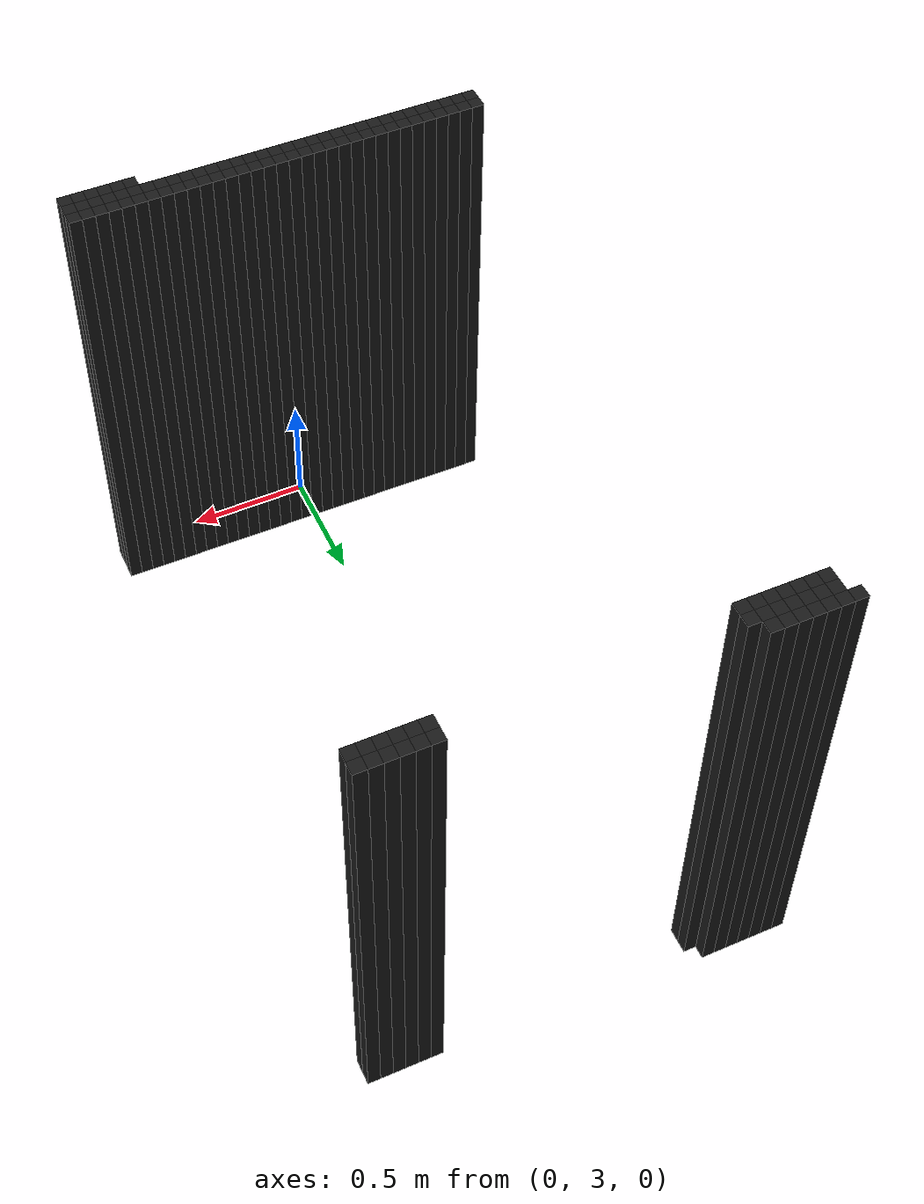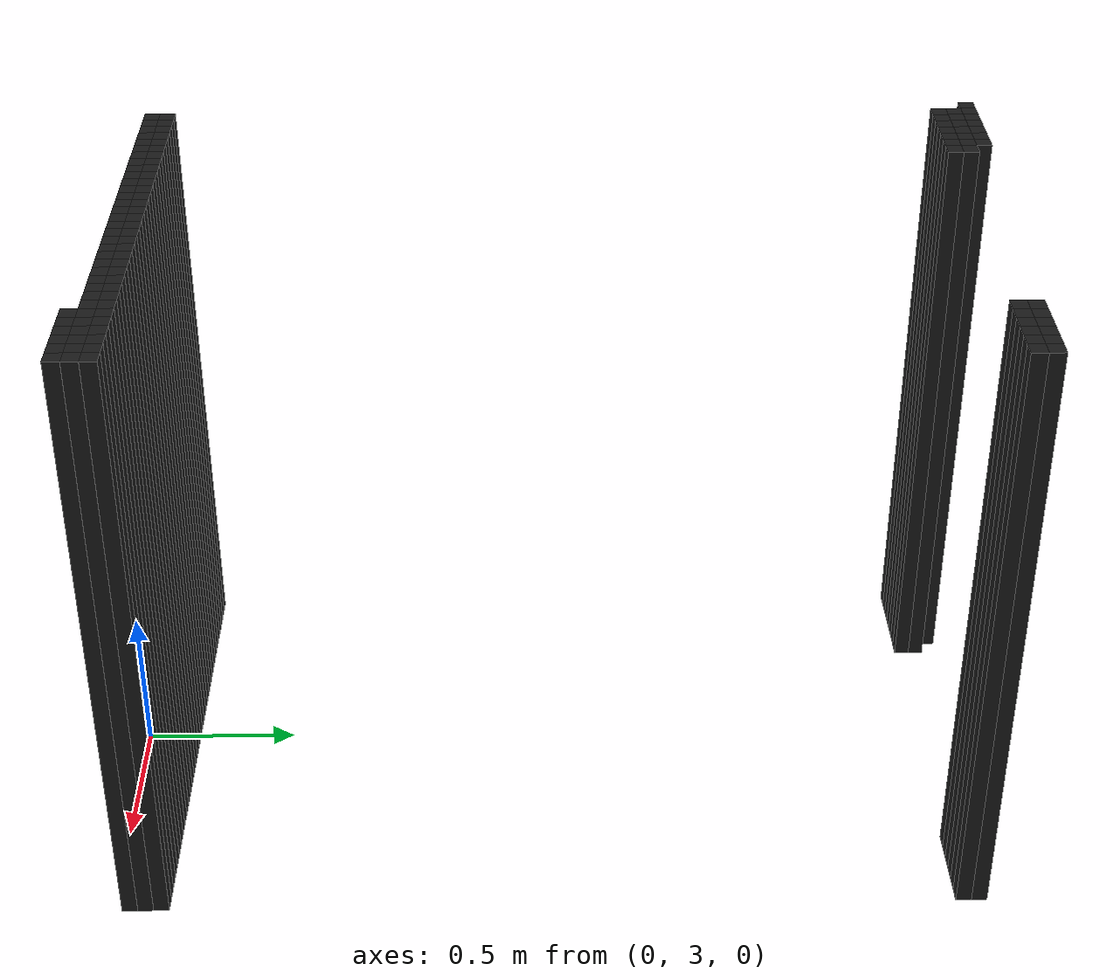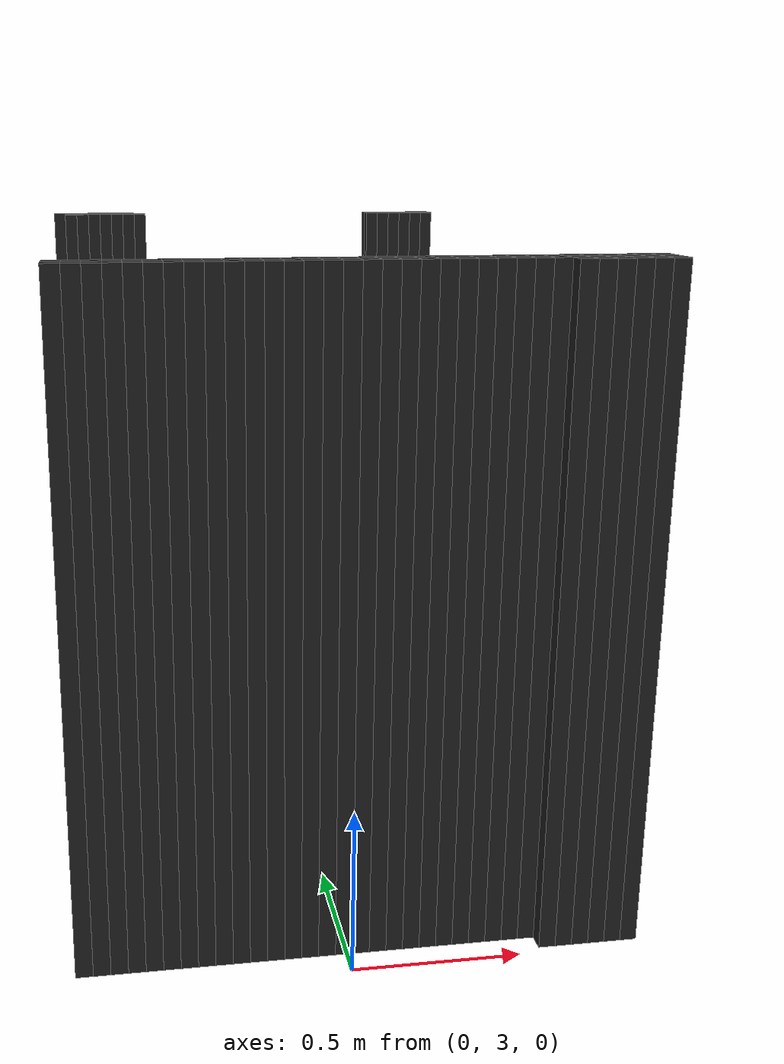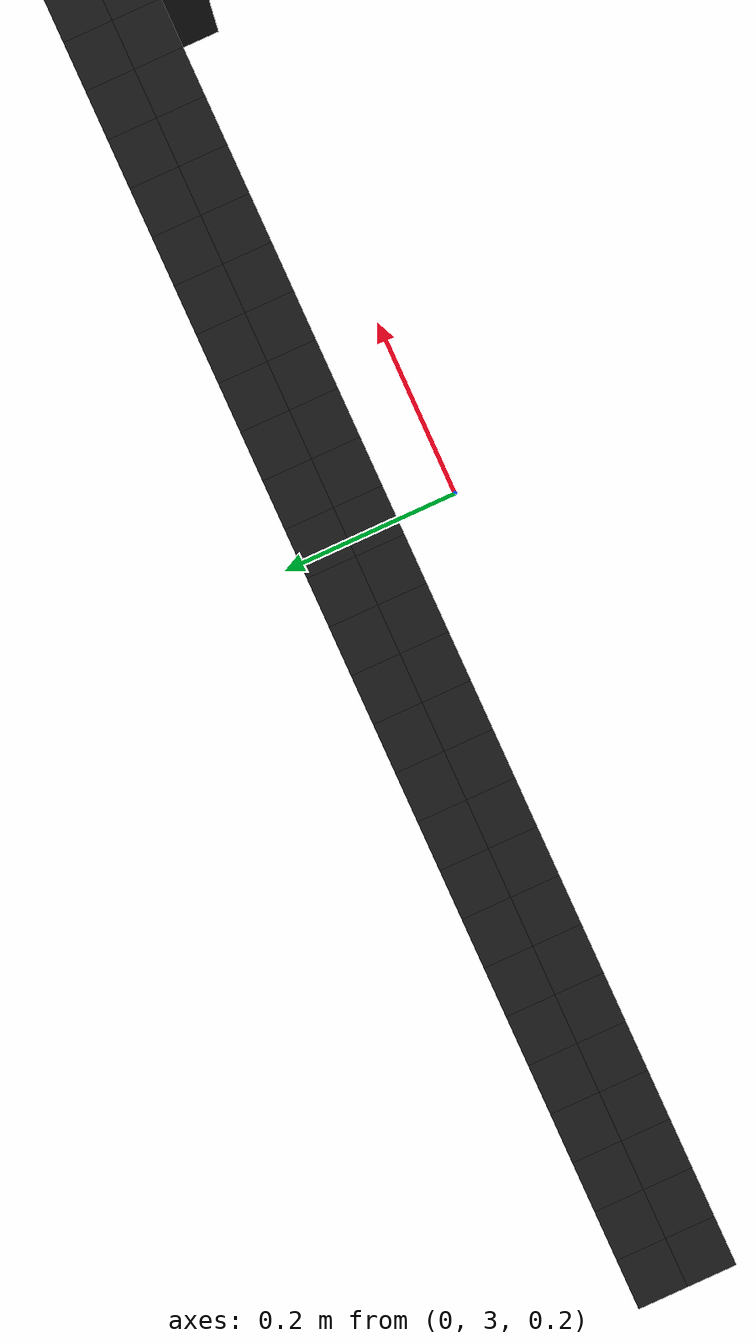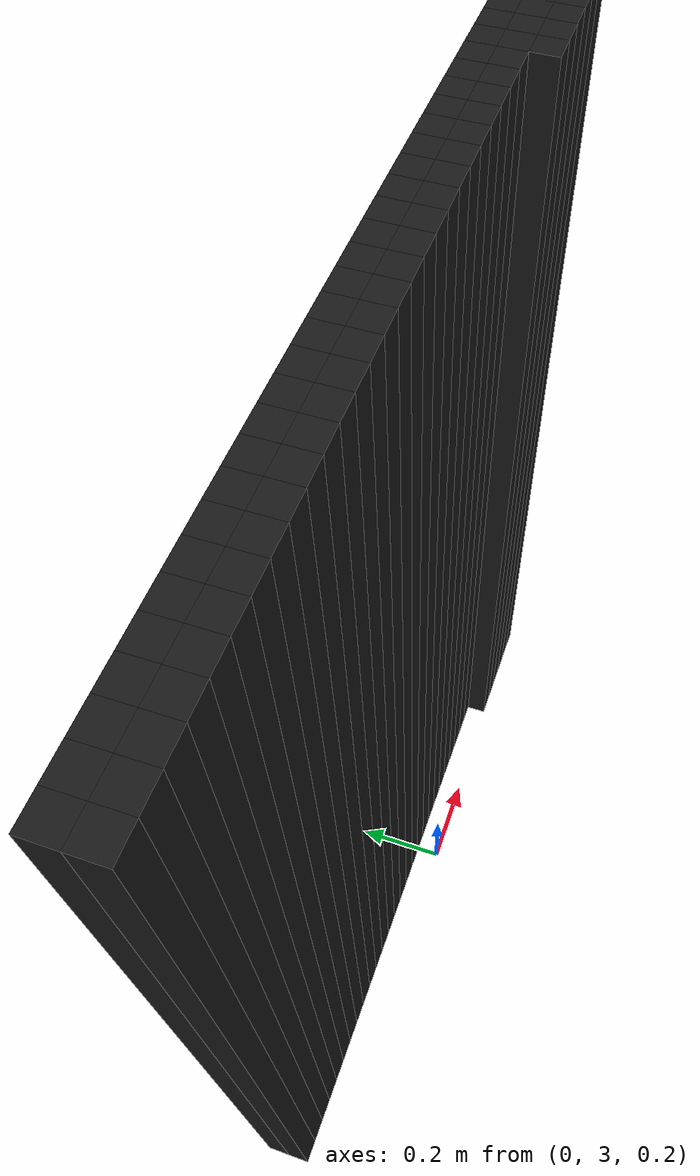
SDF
<sdf version="1.6">
 <model name="obstacle_74_51">
  <pose>-0.8099999999999996 5.8 1.0 0 0 0</pose>
  <static>true</static>
  <link name="box_link">
   <collision name="box_collision"><geometry><box><size>0.05 0.05 2.0</size></box></geometry></collision>
   <visual name="box_visual">
    <geometry><box><size>0.05 0.05 2.0</size></box></geometry>
    <material><ambient>0 0 0 1</ambient><diffuse>0.1 0.1 0.1 1</diffuse></material>
   </visual>
  </link>
 </model>
 <model name="obstacle_75_51">
  <pose>-0.7599999999999998 5.8 1.0 0 0 0</pose>
  <static>true</static>
  <link name="box_link">
   <collision name="box_collision"><geometry><box><size>0.05 0.05 2.0</size></box></geometry></collision>
   <visual name="box_visual">
    <geometry><box><size>0.05 0.05 2.0</size></box></geometry>
    <material><ambient>0 0 0 1</ambient><diffuse>0.1 0.1 0.1 1</diffuse></material>
   </visual>
  </link>
 </model>
 <model name="obstacle_76_51">
  <pose>-0.7099999999999995 5.8 1.0 0 0 0</pose>
  <static>true</static>
  <link name="box_link">
   <collision name="box_collision"><geometry><box><size>0.05 0.05 2.0</size></box></geometry></collision>
   <visual name="box_visual">
    <geometry><box><size>0.05 0.05 2.0</size></box></geometry>
    <material><ambient>0 0 0 1</ambient><diffuse>0.1 0.1 0.1 1</diffuse></material>
   </visual>
  </link>
 </model>
 <model name="obstacle_77_51">
  <pose>-0.6599999999999997 5.8 1.0 0 0 0</pose>
  <static>true</static>
  <link name="box_link">
   <collision name="box_collision"><geometry><box><size>0.05 0.05 2.0</size></box></geometry></collision>
   <visual name="box_visual">
    <geometry><box><size>0.05 0.05 2.0</size></box></geometry>
    <material><ambient>0 0 0 1</ambient><diffuse>0.1 0.1 0.1 1</diffuse></material>
   </visual>
  </link>
 </model>
 <model name="obstacle_78_51">
  <pose>-0.6099999999999994 5.8 1.0 0 0 0</pose>
  <static>true</static>
  <link name="box_link">
   <collision name="box_collision"><geometry><box><size>0.05 0.05 2.0</size></box></geometry></collision>
   <visual name="box_visual">
    <geometry><box><size>0.05 0.05 2.0</size></box></geometry>
    <material><ambient>0 0 0 1</ambient><diffuse>0.1 0.1 0.1 1</diffuse></material>
   </visual>
  </link>
 </model>
 <model name="obstacle_79_51">
  <pose>-0.5599999999999996 5.8 1.0 0 0 0</pose>
  <static>true</static>
  <link name="box_link">
   <collision name="box_collision"><geometry><box><size>0.05 0.05 2.0</size></box></geometry></collision>
   <visual name="box_visual">
    <geometry><box><size>0.05 0.05 2.0</size></box></geometry>
    <material><ambient>0 0 0 1</ambient><diffuse>0.1 0.1 0.1 1</diffuse></material>
   </visual>
  </link>
 </model>
 <model name="obstacle_80_51">
  <pose>-0.5099999999999998 5.8 1.0 0 0 0</pose>
  <static>true</static>
  <link name="box_link">
   <collision name="box_collision"><geometry><box><size>0.05 0.05 2.0</size></box></geometry></collision>
   <visual name="box_visual">
    <geometry><box><size>0.05 0.05 2.0</size></box></geometry>
    <material><ambient>0 0 0 1</ambient><diffuse>0.1 0.1 0.1 1</diffuse></material>
   </visual>
  </link>
 </model>
 <model name="obstacle_75_52">
  <pose>-0.7599999999999998 5.75 1.0 0 0 0</pose>
  <static>true</static>
  <link name="box_link">
   <collision name="box_collision"><geometry><box><size>0.05 0.05 2.0</size></box></geometry></collision>
   <visual name="box_visual">
    <geometry><box><size>0.05 0.05 2.0</size></box></geometry>
    <material><ambient>0 0 0 1</ambient><diffuse>0.1 0.1 0.1 1</diffuse></material>
   </visual>
  </link>
 </model>
 <model name="obstacle_76_52">
  <pose>-0.7099999999999995 5.75 1.0 0 0 0</pose>
  <static>true</static>
  <link name="box_link">
   <collision name="box_collision"><geometry><box><size>0.05 0.05 2.0</size></box></geometry></collision>
   <visual name="box_visual">
    <geometry><box><size>0.05 0.05 2.0</size></box></geometry>
    <material><ambient>0 0 0 1</ambient><diffuse>0.1 0.1 0.1 1</diffuse></material>
   </visual>
  </link>
 </model>
 <model name="obstacle_77_52">
  <pose>-0.6599999999999997 5.75 1.0 0 0 0</pose>
  <static>true</static>
  <link name="box_link">
   <collision name="box_collision"><geometry><box><size>0.05 0.05 2.0</size></box></geometry></collision>
   <visual name="box_visual">
    <geometry><box><size>0.05 0.05 2.0</size></box></geometry>
    <material><ambient>0 0 0 1</ambient><diffuse>0.1 0.1 0.1 1</diffuse></material>
   </visual>
  </link>
 </model>
 <model name="obstacle_78_52">
  <pose>-0.6099999999999994 5.75 1.0 0 0 0</pose>
  <static>true</static>
  <link name="box_link">
   <collision name="box_collision"><geometry><box><size>0.05 0.05 2.0</size></box></geometry></collision>
   <visual name="box_visual">
    <geometry><box><size>0.05 0.05 2.0</size></box></geometry>
    <material><ambient>0 0 0 1</ambient><diffuse>0.1 0.1 0.1 1</diffuse></material>
   </visual>
  </link>
 </model>
 <model name="obstacle_79_52">
  <pose>-0.5599999999999996 5.75 1.0 0 0 0</pose>
  <static>true</static>
  <link name="box_link">
   <collision name="box_collision"><geometry><box><size>0.05 0.05 2.0</size></box></geometry></collision>
   <visual name="box_visual">
    <geometry><box><size>0.05 0.05 2.0</size></box></geometry>
    <material><ambient>0 0 0 1</ambient><diffuse>0.1 0.1 0.1 1</diffuse></material>
   </visual>
  </link>
 </model>
 <model name="obstacle_80_52">
  <pose>-0.5099999999999998 5.75 1.0 0 0 0</pose>
  <static>true</static>
  <link name="box_link">
   <collision name="box_collision"><geometry><box><size>0.05 0.05 2.0</size></box></geometry></collision>
   <visual name="box_visual">
    <geometry><box><size>0.05 0.05 2.0</size></box></geometry>
    <material><ambient>0 0 0 1</ambient><diffuse>0.1 0.1 0.1 1</diffuse></material>
   </visual>
  </link>
 </model>
 <model name="obstacle_81_52">
  <pose>-0.45999999999999996 5.75 1.0 0 0 0</pose>
  <static>true</static>
  <link name="box_link">
   <collision name="box_collision"><geometry><box><size>0.05 0.05 2.0</size></box></geometry></collision>
   <visual name="box_visual">
    <geometry><box><size>0.05 0.05 2.0</size></box></geometry>
    <material><ambient>0 0 0 1</ambient><diffuse>0.1 0.1 0.1 1</diffuse></material>
   </visual>
  </link>
 </model>
 <model name="obstacle_102_52">
  <pose>0.5900000000000007 5.75 1.0 0 0 0</pose>
  <static>true</static>
  <link name="box_link">
   <collision name="box_collision"><geometry><box><size>0.05 0.05 2.0</size></box></geometry></collision>
   <visual name="box_visual">
    <geometry><box><size>0.05 0.05 2.0</size></box></geometry>
    <material><ambient>0 0 0 1</ambient><diffuse>0.1 0.1 0.1 1</diffuse></material>
   </visual>
  </link>
 </model>
 <model name="obstacle_103_52">
  <pose>0.6400000000000006 5.75 1.0 0 0 0</pose>
  <static>true</static>
  <link name="box_link">
   <collision name="box_collision"><geometry><box><size>0.05 0.05 2.0</size></box></geometry></collision>
   <visual name="box_visual">
    <geometry><box><size>0.05 0.05 2.0</size></box></geometry>
    <material><ambient>0 0 0 1</ambient><diffuse>0.1 0.1 0.1 1</diffuse></material>
   </visual>
  </link>
 </model>
 <model name="obstacle_104_52">
  <pose>0.6900000000000004 5.75 1.0 0 0 0</pose>
  <static>true</static>
  <link name="box_link">
   <collision name="box_collision"><geometry><box><size>0.05 0.05 2.0</size></box></geometry></collision>
   <visual name="box_visual">
    <geometry><box><size>0.05 0.05 2.0</size></box></geometry>
    <material><ambient>0 0 0 1</ambient><diffuse>0.1 0.1 0.1 1</diffuse></material>
   </visual>
  </link>
 </model>
 <model name="obstacle_105_52">
  <pose>0.7400000000000002 5.75 1.0 0 0 0</pose>
  <static>true</static>
  <link name="box_link">
   <collision name="box_collision"><geometry><box><size>0.05 0.05 2.0</size></box></geometry></collision>
   <visual name="box_visual">
    <geometry><box><size>0.05 0.05 2.0</size></box></geometry>
    <material><ambient>0 0 0 1</ambient><diffuse>0.1 0.1 0.1 1</diffuse></material>
   </visual>
  </link>
 </model>
 <model name="obstacle_106_52">
  <pose>0.7900000000000009 5.75 1.0 0 0 0</pose>
  <static>true</static>
  <link name="box_link">
   <collision name="box_collision"><geometry><box><size>0.05 0.05 2.0</size></box></geometry></collision>
   <visual name="box_visual">
    <geometry><box><size>0.05 0.05 2.0</size></box></geometry>
    <material><ambient>0 0 0 1</ambient><diffuse>0.1 0.1 0.1 1</diffuse></material>
   </visual>
  </link>
 </model>
 <model name="obstacle_107_52">
  <pose>0.8400000000000007 5.75 1.0 0 0 0</pose>
  <static>true</static>
  <link name="box_link">
   <collision name="box_collision"><geometry><box><size>0.05 0.05 2.0</size></box></geometry></collision>
   <visual name="box_visual">
    <geometry><box><size>0.05 0.05 2.0</size></box></geometry>
    <material><ambient>0 0 0 1</ambient><diffuse>0.1 0.1 0.1 1</diffuse></material>
   </visual>
  </link>
 </model>
 <model name="obstacle_75_53">
  <pose>-0.7599999999999998 5.7 1.0 0 0 0</pose>
  <static>true</static>
  <link name="box_link">
   <collision name="box_collision"><geometry><box><size>0.05 0.05 2.0</size></box></geometry></collision>
   <visual name="box_visual">
    <geometry><box><size>0.05 0.05 2.0</size></box></geometry>
    <material><ambient>0 0 0 1</ambient><diffuse>0.1 0.1 0.1 1</diffuse></material>
   </visual>
  </link>
 </model>
 <model name="obstacle_76_53">
  <pose>-0.7099999999999995 5.7 1.0 0 0 0</pose>
  <static>true</static>
  <link name="box_link">
   <collision name="box_collision"><geometry><box><size>0.05 0.05 2.0</size></box></geometry></collision>
   <visual name="box_visual">
    <geometry><box><size>0.05 0.05 2.0</size></box></geometry>
    <material><ambient>0 0 0 1</ambient><diffuse>0.1 0.1 0.1 1</diffuse></material>
   </visual>
  </link>
 </model>
 <model name="obstacle_77_53">
  <pose>-0.6599999999999997 5.7 1.0 0 0 0</pose>
  <static>true</static>
  <link name="box_link">
   <collision name="box_collision"><geometry><box><size>0.05 0.05 2.0</size></box></geometry></collision>
   <visual name="box_visual">
    <geometry><box><size>0.05 0.05 2.0</size></box></geometry>
    <material><ambient>0 0 0 1</ambient><diffuse>0.1 0.1 0.1 1</diffuse></material>
   </visual>
  </link>
 </model>
 <model name="obstacle_78_53">
  <pose>-0.6099999999999994 5.7 1.0 0 0 0</pose>
  <static>true</static>
  <link name="box_link">
   <collision name="box_collision"><geometry><box><size>0.05 0.05 2.0</size></box></geometry></collision>
   <visual name="box_visual">
    <geometry><box><size>0.05 0.05 2.0</size></box></geometry>
    <material><ambient>0 0 0 1</ambient><diffuse>0.1 0.1 0.1 1</diffuse></material>
   </visual>
  </link>
 </model>
 <model name="obstacle_79_53">
  <pose>-0.5599999999999996 5.7 1.0 0 0 0</pose>
  <static>true</static>
  <link name="box_link">
   <collision name="box_collision"><geometry><box><size>0.05 0.05 2.0</size></box></geometry></collision>
   <visual name="box_visual">
    <geometry><box><size>0.05 0.05 2.0</size></box></geometry>
    <material><ambient>0 0 0 1</ambient><diffuse>0.1 0.1 0.1 1</diffuse></material>
   </visual>
  </link>
 </model>
 <model name="obstacle_80_53">
  <pose>-0.5099999999999998 5.7 1.0 0 0 0</pose>
  <static>true</static>
  <link name="box_link">
   <collision name="box_collision"><geometry><box><size>0.05 0.05 2.0</size></box></geometry></collision>
   <visual name="box_visual">
    <geometry><box><size>0.05 0.05 2.0</size></box></geometry>
    <material><ambient>0 0 0 1</ambient><diffuse>0.1 0.1 0.1 1</diffuse></material>
   </visual>
  </link>
 </model>
 <model name="obstacle_81_53">
  <pose>-0.45999999999999996 5.7 1.0 0 0 0</pose>
  <static>true</static>
  <link name="box_link">
   <collision name="box_collision"><geometry><box><size>0.05 0.05 2.0</size></box></geometry></collision>
   <visual name="box_visual">
    <geometry><box><size>0.05 0.05 2.0</size></box></geometry>
    <material><ambient>0 0 0 1</ambient><diffuse>0.1 0.1 0.1 1</diffuse></material>
   </visual>
  </link>
 </model>
 <model name="obstacle_102_53">
  <pose>0.5900000000000007 5.7 1.0 0 0 0</pose>
  <static>true</static>
  <link name="box_link">
   <collision name="box_collision"><geometry><box><size>0.05 0.05 2.0</size></box></geometry></collision>
   <visual name="box_visual">
    <geometry><box><size>0.05 0.05 2.0</size></box></geometry>
    <material><ambient>0 0 0 1</ambient><diffuse>0.1 0.1 0.1 1</diffuse></material>
   </visual>
  </link>
 </model>
 <model name="obstacle_103_53">
  <pose>0.6400000000000006 5.7 1.0 0 0 0</pose>
  <static>true</static>
  <link name="box_link">
   <collision name="box_collision"><geometry><box><size>0.05 0.05 2.0</size></box></geometry></collision>
   <visual name="box_visual">
    <geometry><box><size>0.05 0.05 2.0</size></box></geometry>
    <material><ambient>0 0 0 1</ambient><diffuse>0.1 0.1 0.1 1</diffuse></material>
   </visual>
  </link>
 </model>
 <model name="obstacle_104_53">
  <pose>0.6900000000000004 5.7 1.0 0 0 0</pose>
  <static>true</static>
  <link name="box_link">
   <collision name="box_collision"><geometry><box><size>0.05 0.05 2.0</size></box></geometry></collision>
   <visual name="box_visual">
    <geometry><box><size>0.05 0.05 2.0</size></box></geometry>
    <material><ambient>0 0 0 1</ambient><diffuse>0.1 0.1 0.1 1</diffuse></material>
   </visual>
  </link>
 </model>
 <model name="obstacle_105_53">
  <pose>0.7400000000000002 5.7 1.0 0 0 0</pose>
  <static>true</static>
  <link name="box_link">
   <collision name="box_collision"><geometry><box><size>0.05 0.05 2.0</size></box></geometry></collision>
   <visual name="box_visual">
    <geometry><box><size>0.05 0.05 2.0</size></box></geometry>
    <material><ambient>0 0 0 1</ambient><diffuse>0.1 0.1 0.1 1</diffuse></material>
   </visual>
  </link>
 </model>
 <model name="obstacle_106_53">
  <pose>0.7900000000000009 5.7 1.0 0 0 0</pose>
  <static>true</static>
  <link name="box_link">
   <collision name="box_collision"><geometry><box><size>0.05 0.05 2.0</size></box></geometry></collision>
   <visual name="box_visual">
    <geometry><box><size>0.05 0.05 2.0</size></box></geometry>
    <material><ambient>0 0 0 1</ambient><diffuse>0.1 0.1 0.1 1</diffuse></material>
   </visual>
  </link>
 </model>
 <model name="obstacle_107_53">
  <pose>0.8400000000000007 5.7 1.0 0 0 0</pose>
  <static>true</static>
  <link name="box_link">
   <collision name="box_collision"><geometry><box><size>0.05 0.05 2.0</size></box></geometry></collision>
   <visual name="box_visual">
    <geometry><box><size>0.05 0.05 2.0</size></box></geometry>
    <material><ambient>0 0 0 1</ambient><diffuse>0.1 0.1 0.1 1</diffuse></material>
   </visual>
  </link>
 </model>
 <model name="obstacle_75_104">
  <pose>-0.7599999999999998 3.1500000000000004 1.0 0 0 0</pose>
  <static>true</static>
  <link name="box_link">
   <collision name="box_collision"><geometry><box><size>0.05 0.05 2.0</size></box></geometry></collision>
   <visual name="box_visual">
    <geometry><box><size>0.05 0.05 2.0</size></box></geometry>
    <material><ambient>0 0 0 1</ambient><diffuse>0.1 0.1 0.1 1</diffuse></material>
   </visual>
  </link>
 </model>
 <model name="obstacle_76_104">
  <pose>-0.7099999999999995 3.1500000000000004 1.0 0 0 0</pose>
  <static>true</static>
  <link name="box_link">
   <collision name="box_collision"><geometry><box><size>0.05 0.05 2.0</size></box></geometry></collision>
   <visual name="box_visual">
    <geometry><box><size>0.05 0.05 2.0</size></box></geometry>
    <material><ambient>0 0 0 1</ambient><diffuse>0.1 0.1 0.1 1</diffuse></material>
   </visual>
  </link>
 </model>
 <model name="obstacle_77_104">
  <pose>-0.6599999999999997 3.1500000000000004 1.0 0 0 0</pose>
  <static>true</static>
  <link name="box_link">
   <collision name="box_collision"><geometry><box><size>0.05 0.05 2.0</size></box></geometry></collision>
   <visual name="box_visual">
    <geometry><box><size>0.05 0.05 2.0</size></box></geometry>
    <material><ambient>0 0 0 1</ambient><diffuse>0.1 0.1 0.1 1</diffuse></material>
   </visual>
  </link>
 </model>
 <model name="obstacle_78_104">
  <pose>-0.6099999999999994 3.1500000000000004 1.0 0 0 0</pose>
  <static>true</static>
  <link name="box_link">
   <collision name="box_collision"><geometry><box><size>0.05 0.05 2.0</size></box></geometry></collision>
   <visual name="box_visual">
    <geometry><box><size>0.05 0.05 2.0</size></box></geometry>
    <material><ambient>0 0 0 1</ambient><diffuse>0.1 0.1 0.1 1</diffuse></material>
   </visual>
  </link>
 </model>
 <model name="obstacle_79_104">
  <pose>-0.5599999999999996 3.1500000000000004 1.0 0 0 0</pose>
  <static>true</static>
  <link name="box_link">
   <collision name="box_collision"><geometry><box><size>0.05 0.05 2.0</size></box></geometry></collision>
   <visual name="box_visual">
    <geometry><box><size>0.05 0.05 2.0</size></box></geometry>
    <material><ambient>0 0 0 1</ambient><diffuse>0.1 0.1 0.1 1</diffuse></material>
   </visual>
  </link>
 </model>
 <model name="obstacle_80_104">
  <pose>-0.5099999999999998 3.1500000000000004 1.0 0 0 0</pose>
  <static>true</static>
  <link name="box_link">
   <collision name="box_collision"><geometry><box><size>0.05 0.05 2.0</size></box></geometry></collision>
   <visual name="box_visual">
    <geometry><box><size>0.05 0.05 2.0</size></box></geometry>
    <material><ambient>0 0 0 1</ambient><diffuse>0.1 0.1 0.1 1</diffuse></material>
   </visual>
  </link>
 </model>
 <model name="obstacle_81_104">
  <pose>-0.45999999999999996 3.1500000000000004 1.0 0 0 0</pose>
  <static>true</static>
  <link name="box_link">
   <collision name="box_collision"><geometry><box><size>0.05 0.05 2.0</size></box></geometry></collision>
   <visual name="box_visual">
    <geometry><box><size>0.05 0.05 2.0</size></box></geometry>
    <material><ambient>0 0 0 1</ambient><diffuse>0.1 0.1 0.1 1</diffuse></material>
   </visual>
  </link>
 </model>
 <model name="obstacle_82_104">
  <pose>-0.40999999999999925 3.1500000000000004 1.0 0 0 0</pose>
  <static>true</static>
  <link name="box_link">
   <collision name="box_collision"><geometry><box><size>0.05 0.05 2.0</size></box></geometry></collision>
   <visual name="box_visual">
    <geometry><box><size>0.05 0.05 2.0</size></box></geometry>
    <material><ambient>0 0 0 1</ambient><diffuse>0.1 0.1 0.1 1</diffuse></material>
   </visual>
  </link>
 </model>
 <model name="obstacle_83_104">
  <pose>-0.35999999999999943 3.1500000000000004 1.0 0 0 0</pose>
  <static>true</static>
  <link name="box_link">
   <collision name="box_collision"><geometry><box><size>0.05 0.05 2.0</size></box></geometry></collision>
   <visual name="box_visual">
    <geometry><box><size>0.05 0.05 2.0</size></box></geometry>
    <material><ambient>0 0 0 1</ambient><diffuse>0.1 0.1 0.1 1</diffuse></material>
   </visual>
  </link>
 </model>
 <model name="obstacle_84_104">
  <pose>-0.3099999999999996 3.1500000000000004 1.0 0 0 0</pose>
  <static>true</static>
  <link name="box_link">
   <collision name="box_collision"><geometry><box><size>0.05 0.05 2.0</size></box></geometry></collision>
   <visual name="box_visual">
    <geometry><box><size>0.05 0.05 2.0</size></box></geometry>
    <material><ambient>0 0 0 1</ambient><diffuse>0.1 0.1 0.1 1</diffuse></material>
   </visual>
  </link>
 </model>
 <model name="obstacle_85_104">
  <pose>-0.2599999999999998 3.1500000000000004 1.0 0 0 0</pose>
  <static>true</static>
  <link name="box_link">
   <collision name="box_collision"><geometry><box><size>0.05 0.05 2.0</size></box></geometry></collision>
   <visual name="box_visual">
    <geometry><box><size>0.05 0.05 2.0</size></box></geometry>
    <material><ambient>0 0 0 1</ambient><diffuse>0.1 0.1 0.1 1</diffuse></material>
   </visual>
  </link>
 </model>
 <model name="obstacle_86_104">
  <pose>-0.20999999999999996 3.1500000000000004 1.0 0 0 0</pose>
  <static>true</static>
  <link name="box_link">
   <collision name="box_collision"><geometry><box><size>0.05 0.05 2.0</size></box></geometry></collision>
   <visual name="box_visual">
    <geometry><box><size>0.05 0.05 2.0</size></box></geometry>
    <material><ambient>0 0 0 1</ambient><diffuse>0.1 0.1 0.1 1</diffuse></material>
   </visual>
  </link>
 </model>
 <model name="obstacle_87_104">
  <pose>-0.15999999999999925 3.1500000000000004 1.0 0 0 0</pose>
  <static>true</static>
  <link name="box_link">
   <collision name="box_collision"><geometry><box><size>0.05 0.05 2.0</size></box></geometry></collision>
   <visual name="box_visual">
    <geometry><box><size>0.05 0.05 2.0</size></box></geometry>
    <material><ambient>0 0 0 1</ambient><diffuse>0.1 0.1 0.1 1</diffuse></material>
   </visual>
  </link>
 </model>
 <model name="obstacle_88_104">
  <pose>-0.10999999999999943 3.1500000000000004 1.0 0 0 0</pose>
  <static>true</static>
  <link name="box_link">
   <collision name="box_collision"><geometry><box><size>0.05 0.05 2.0</size></box></geometry></collision>
   <visual name="box_visual">
    <geometry><box><size>0.05 0.05 2.0</size></box></geometry>
    <material><ambient>0 0 0 1</ambient><diffuse>0.1 0.1 0.1 1</diffuse></material>
   </visual>
  </link>
 </model>
 <model name="obstacle_89_104">
  <pose>-0.05999999999999961 3.1500000000000004 1.0 0 0 0</pose>
  <static>true</static>
  <link name="box_link">
   <collision name="box_collision"><geometry><box><size>0.05 0.05 2.0</size></box></geometry></collision>
   <visual name="box_visual">
    <geometry><box><size>0.05 0.05 2.0</size></box></geometry>
    <material><ambient>0 0 0 1</ambient><diffuse>0.1 0.1 0.1 1</diffuse></material>
   </visual>
  </link>
 </model>
 <model name="obstacle_90_104">
  <pose>-0.009999999999999787 3.1500000000000004 1.0 0 0 0</pose>
  <static>true</static>
  <link name="box_link">
   <collision name="box_collision"><geometry><box><size>0.05 0.05 2.0</size></box></geometry></collision>
   <visual name="box_visual">
    <geometry><box><size>0.05 0.05 2.0</size></box></geometry>
    <material><ambient>0 0 0 1</ambient><diffuse>0.1 0.1 0.1 1</diffuse></material>
   </visual>
  </link>
 </model>
 <model name="obstacle_91_104">
  <pose>0.040000000000000036 3.1500000000000004 1.0 0 0 0</pose>
  <static>true</static>
  <link name="box_link">
   <collision name="box_collision"><geometry><box><size>0.05 0.05 2.0</size></box></geometry></collision>
   <visual name="box_visual">
    <geometry><box><size>0.05 0.05 2.0</size></box></geometry>
    <material><ambient>0 0 0 1</ambient><diffuse>0.1 0.1 0.1 1</diffuse></material>
   </visual>
  </link>
 </model>
 <model name="obstacle_92_104">
  <pose>0.09000000000000075 3.1500000000000004 1.0 0 0 0</pose>
  <static>true</static>
  <link name="box_link">
   <collision name="box_collision"><geometry><box><size>0.05 0.05 2.0</size></box></geometry></collision>
   <visual name="box_visual">
    <geometry><box><size>0.05 0.05 2.0</size></box></geometry>
    <material><ambient>0 0 0 1</ambient><diffuse>0.1 0.1 0.1 1</diffuse></material>
   </visual>
  </link>
 </model>
 <model name="obstacle_93_104">
  <pose>0.14000000000000057 3.1500000000000004 1.0 0 0 0</pose>
  <static>true</static>
  <link name="box_link">
   <collision name="box_collision"><geometry><box><size>0.05 0.05 2.0</size></box></geometry></collision>
   <visual name="box_visual">
    <geometry><box><size>0.05 0.05 2.0</size></box></geometry>
    <material><ambient>0 0 0 1</ambient><diffuse>0.1 0.1 0.1 1</diffuse></material>
   </visual>
  </link>
 </model>
 <model name="obstacle_94_104">
  <pose>0.1900000000000004 3.1500000000000004 1.0 0 0 0</pose>
  <static>true</static>
  <link name="box_link">
   <collision name="box_collision"><geometry><box><size>0.05 0.05 2.0</size></box></geometry></collision>
   <visual name="box_visual">
    <geometry><box><size>0.05 0.05 2.0</size></box></geometry>
    <material><ambient>0 0 0 1</ambient><diffuse>0.1 0.1 0.1 1</diffuse></material>
   </visual>
  </link>
 </model>
 <model name="obstacle_95_104">
  <pose>0.2400000000000002 3.1500000000000004 1.0 0 0 0</pose>
  <static>true</static>
  <link name="box_link">
   <collision name="box_collision"><geometry><box><size>0.05 0.05 2.0</size></box></geometry></collision>
   <visual name="box_visual">
    <geometry><box><size>0.05 0.05 2.0</size></box></geometry>
    <material><ambient>0 0 0 1</ambient><diffuse>0.1 0.1 0.1 1</diffuse></material>
   </visual>
  </link>
 </model>
 <model name="obstacle_96_104">
  <pose>0.2900000000000009 3.1500000000000004 1.0 0 0 0</pose>
  <static>true</static>
  <link name="box_link">
   <collision name="box_collision"><geometry><box><size>0.05 0.05 2.0</size></box></geometry></collision>
   <visual name="box_visual">
    <geometry><box><size>0.05 0.05 2.0</size></box></geometry>
    <material><ambient>0 0 0 1</ambient><diffuse>0.1 0.1 0.1 1</diffuse></material>
   </visual>
  </link>
 </model>
 <model name="obstacle_97_104">
  <pose>0.34000000000000075 3.1500000000000004 1.0 0 0 0</pose>
  <static>true</static>
  <link name="box_link">
   <collision name="box_collision"><geometry><box><size>0.05 0.05 2.0</size></box></geometry></collision>
   <visual name="box_visual">
    <geometry><box><size>0.05 0.05 2.0</size></box></geometry>
    <material><ambient>0 0 0 1</ambient><diffuse>0.1 0.1 0.1 1</diffuse></material>
   </visual>
  </link>
 </model>
 <model name="obstacle_98_104">
  <pose>0.39000000000000057 3.1500000000000004 1.0 0 0 0</pose>
  <static>true</static>
  <link name="box_link">
   <collision name="box_collision"><geometry><box><size>0.05 0.05 2.0</size></box></geometry></collision>
   <visual name="box_visual">
    <geometry><box><size>0.05 0.05 2.0</size></box></geometry>
    <material><ambient>0 0 0 1</ambient><diffuse>0.1 0.1 0.1 1</diffuse></material>
   </visual>
  </link>
 </model>
 <model name="obstacle_99_104">
  <pose>0.4400000000000004 3.1500000000000004 1.0 0 0 0</pose>
  <static>true</static>
  <link name="box_link">
   <collision name="box_collision"><geometry><box><size>0.05 0.05 2.0</size></box></geometry></collision>
   <visual name="box_visual">
    <geometry><box><size>0.05 0.05 2.0</size></box></geometry>
    <material><ambient>0 0 0 1</ambient><diffuse>0.1 0.1 0.1 1</diffuse></material>
   </visual>
  </link>
 </model>
 <model name="obstacle_100_104">
  <pose>0.4900000000000002 3.1500000000000004 1.0 0 0 0</pose>
  <static>true</static>
  <link name="box_link">
   <collision name="box_collision"><geometry><box><size>0.05 0.05 2.0</size></box></geometry></collision>
   <visual name="box_visual">
    <geometry><box><size>0.05 0.05 2.0</size></box></geometry>
    <material><ambient>0 0 0 1</ambient><diffuse>0.1 0.1 0.1 1</diffuse></material>
   </visual>
  </link>
 </model>
 <model name="obstacle_101_104">
  <pose>0.5400000000000009 3.1500000000000004 1.0 0 0 0</pose>
  <static>true</static>
  <link name="box_link">
   <collision name="box_collision"><geometry><box><size>0.05 0.05 2.0</size></box></geometry></collision>
   <visual name="box_visual">
    <geometry><box><size>0.05 0.05 2.0</size></box></geometry>
    <material><ambient>0 0 0 1</ambient><diffuse>0.1 0.1 0.1 1</diffuse></material>
   </visual>
  </link>
 </model>
 <model name="obstacle_102_104">
  <pose>0.5900000000000007 3.1500000000000004 1.0 0 0 0</pose>
  <static>true</static>
  <link name="box_link">
   <collision name="box_collision"><geometry><box><size>0.05 0.05 2.0</size></box></geometry></collision>
   <visual name="box_visual">
    <geometry><box><size>0.05 0.05 2.0</size></box></geometry>
    <material><ambient>0 0 0 1</ambient><diffuse>0.1 0.1 0.1 1</diffuse></material>
   </visual>
  </link>
 </model>
 <model name="obstacle_103_104">
  <pose>0.6400000000000006 3.1500000000000004 1.0 0 0 0</pose>
  <static>true</static>
  <link name="box_link">
   <collision name="box_collision"><geometry><box><size>0.05 0.05 2.0</size></box></geometry></collision>
   <visual name="box_visual">
    <geometry><box><size>0.05 0.05 2.0</size></box></geometry>
    <material><ambient>0 0 0 1</ambient><diffuse>0.1 0.1 0.1 1</diffuse></material>
   </visual>
  </link>
 </model>
 <model name="obstacle_104_104">
  <pose>0.6900000000000004 3.1500000000000004 1.0 0 0 0</pose>
  <static>true</static>
  <link name="box_link">
   <collision name="box_collision"><geometry><box><size>0.05 0.05 2.0</size></box></geometry></collision>
   <visual name="box_visual">
    <geometry><box><size>0.05 0.05 2.0</size></box></geometry>
    <material><ambient>0 0 0 1</ambient><diffuse>0.1 0.1 0.1 1</diffuse></material>
   </visual>
  </link>
 </model>
 <model name="obstacle_105_104">
  <pose>0.7400000000000002 3.1500000000000004 1.0 0 0 0</pose>
  <static>true</static>
  <link name="box_link">
   <collision name="box_collision"><geometry><box><size>0.05 0.05 2.0</size></box></geometry></collision>
   <visual name="box_visual">
    <geometry><box><size>0.05 0.05 2.0</size></box></geometry>
    <material><ambient>0 0 0 1</ambient><diffuse>0.1 0.1 0.1 1</diffuse></material>
   </visual>
  </link>
 </model>
 <model name="obstacle_106_104">
  <pose>0.7900000000000009 3.1500000000000004 1.0 0 0 0</pose>
  <static>true</static>
  <link name="box_link">
   <collision name="box_collision"><geometry><box><size>0.05 0.05 2.0</size></box></geometry></collision>
   <visual name="box_visual">
    <geometry><box><size>0.05 0.05 2.0</size></box></geometry>
    <material><ambient>0 0 0 1</ambient><diffuse>0.1 0.1 0.1 1</diffuse></material>
   </visual>
  </link>
 </model>
 <model name="obstacle_107_104">
  <pose>0.8400000000000007 3.1500000000000004 1.0 0 0 0</pose>
  <static>true</static>
  <link name="box_link">
   <collision name="box_collision"><geometry><box><size>0.05 0.05 2.0</size></box></geometry></collision>
   <visual name="box_visual">
    <geometry><box><size>0.05 0.05 2.0</size></box></geometry>
    <material><ambient>0 0 0 1</ambient><diffuse>0.1 0.1 0.1 1</diffuse></material>
   </visual>
  </link>
 </model>
 <model name="obstacle_75_105">
  <pose>-0.7599999999999998 3.1000000000000005 1.0 0 0 0</pose>
  <static>true</static>
  <link name="box_link">
   <collision name="box_collision"><geometry><box><size>0.05 0.05 2.0</size></box></geometry></collision>
   <visual name="box_visual">
    <geometry><box><size>0.05 0.05 2.0</size></box></geometry>
    <material><ambient>0 0 0 1</ambient><diffuse>0.1 0.1 0.1 1</diffuse></material>
   </visual>
  </link>
 </model>
 <model name="obstacle_76_105">
  <pose>-0.7099999999999995 3.1000000000000005 1.0 0 0 0</pose>
  <static>true</static>
  <link name="box_link">
   <collision name="box_collision"><geometry><box><size>0.05 0.05 2.0</size></box></geometry></collision>
   <visual name="box_visual">
    <geometry><box><size>0.05 0.05 2.0</size></box></geometry>
    <material><ambient>0 0 0 1</ambient><diffuse>0.1 0.1 0.1 1</diffuse></material>
   </visual>
  </link>
 </model>
 <model name="obstacle_77_105">
  <pose>-0.6599999999999997 3.1000000000000005 1.0 0 0 0</pose>
  <static>true</static>
  <link name="box_link">
   <collision name="box_collision"><geometry><box><size>0.05 0.05 2.0</size></box></geometry></collision>
   <visual name="box_visual">
    <geometry><box><size>0.05 0.05 2.0</size></box></geometry>
    <material><ambient>0 0 0 1</ambient><diffuse>0.1 0.1 0.1 1</diffuse></material>
   </visual>
  </link>
 </model>
 <model name="obstacle_78_105">
  <pose>-0.6099999999999994 3.1000000000000005 1.0 0 0 0</pose>
  <static>true</static>
  <link name="box_link">
   <collision name="box_collision"><geometry><box><size>0.05 0.05 2.0</size></box></geometry></collision>
   <visual name="box_visual">
    <geometry><box><size>0.05 0.05 2.0</size></box></geometry>
    <material><ambient>0 0 0 1</ambient><diffuse>0.1 0.1 0.1 1</diffuse></material>
   </visual>
  </link>
 </model>
 <model name="obstacle_79_105">
  <pose>-0.5599999999999996 3.1000000000000005 1.0 0 0 0</pose>
  <static>true</static>
  <link name="box_link">
   <collision name="box_collision"><geometry><box><size>0.05 0.05 2.0</size></box></geometry></collision>
   <visual name="box_visual">
    <geometry><box><size>0.05 0.05 2.0</size></box></geometry>
    <material><ambient>0 0 0 1</ambient><diffuse>0.1 0.1 0.1 1</diffuse></material>
   </visual>
  </link>
 </model>
 <model name="obstacle_80_105">
  <pose>-0.5099999999999998 3.1000000000000005 1.0 0 0 0</pose>
  <static>true</static>
  <link name="box_link">
   <collision name="box_collision"><geometry><box><size>0.05 0.05 2.0</size></box></geometry></collision>
   <visual name="box_visual">
    <geometry><box><size>0.05 0.05 2.0</size></box></geometry>
    <material><ambient>0 0 0 1</ambient><diffuse>0.1 0.1 0.1 1</diffuse></material>
   </visual>
  </link>
 </model>
 <model name="obstacle_81_105">
  <pose>-0.45999999999999996 3.1000000000000005 1.0 0 0 0</pose>
  <static>true</static>
  <link name="box_link">
   <collision name="box_collision"><geometry><box><size>0.05 0.05 2.0</size></box></geometry></collision>
   <visual name="box_visual">
    <geometry><box><size>0.05 0.05 2.0</size></box></geometry>
    <material><ambient>0 0 0 1</ambient><diffuse>0.1 0.1 0.1 1</diffuse></material>
   </visual>
  </link>
 </model>
 <model name="obstacle_82_105">
  <pose>-0.40999999999999925 3.1000000000000005 1.0 0 0 0</pose>
  <static>true</static>
  <link name="box_link">
   <collision name="box_collision"><geometry><box><size>0.05 0.05 2.0</size></box></geometry></collision>
   <visual name="box_visual">
    <geometry><box><size>0.05 0.05 2.0</size></box></geometry>
    <material><ambient>0 0 0 1</ambient><diffuse>0.1 0.1 0.1 1</diffuse></material>
   </visual>
  </link>
 </model>
 <model name="obstacle_83_105">
  <pose>-0.35999999999999943 3.1000000000000005 1.0 0 0 0</pose>
  <static>true</static>
  <link name="box_link">
   <collision name="box_collision"><geometry><box><size>0.05 0.05 2.0</size></box></geometry></collision>
   <visual name="box_visual">
    <geometry><box><size>0.05 0.05 2.0</size></box></geometry>
    <material><ambient>0 0 0 1</ambient><diffuse>0.1 0.1 0.1 1</diffuse></material>
   </visual>
  </link>
 </model>
 <model name="obstacle_84_105">
  <pose>-0.3099999999999996 3.1000000000000005 1.0 0 0 0</pose>
  <static>true</static>
  <link name="box_link">
   <collision name="box_collision"><geometry><box><size>0.05 0.05 2.0</size></box></geometry></collision>
   <visual name="box_visual">
    <geometry><box><size>0.05 0.05 2.0</size></box></geometry>
    <material><ambient>0 0 0 1</ambient><diffuse>0.1 0.1 0.1 1</diffuse></material>
   </visual>
  </link>
 </model>
 <model name="obstacle_85_105">
  <pose>-0.2599999999999998 3.1000000000000005 1.0 0 0 0</pose>
  <static>true</static>
  <link name="box_link">
   <collision name="box_collision"><geometry><box><size>0.05 0.05 2.0</size></box></geometry></collision>
   <visual name="box_visual">
    <geometry><box><size>0.05 0.05 2.0</size></box></geometry>
    <material><ambient>0 0 0 1</ambient><diffuse>0.1 0.1 0.1 1</diffuse></material>
   </visual>
  </link>
 </model>
 <model name="obstacle_86_105">
  <pose>-0.20999999999999996 3.1000000000000005 1.0 0 0 0</pose>
  <static>true</static>
  <link name="box_link">
   <collision name="box_collision"><geometry><box><size>0.05 0.05 2.0</size></box></geometry></collision>
   <visual name="box_visual">
    <geometry><box><size>0.05 0.05 2.0</size></box></geometry>
    <material><ambient>0 0 0 1</ambient><diffuse>0.1 0.1 0.1 1</diffuse></material>
   </visual>
  </link>
 </model>
 <model name="obstacle_87_105">
  <pose>-0.15999999999999925 3.1000000000000005 1.0 0 0 0</pose>
  <static>true</static>
  <link name="box_link">
   <collision name="box_collision"><geometry><box><size>0.05 0.05 2.0</size></box></geometry></collision>
   <visual name="box_visual">
    <geometry><box><size>0.05 0.05 2.0</size></box></geometry>
    <material><ambient>0 0 0 1</ambient><diffuse>0.1 0.1 0.1 1</diffuse></material>
   </visual>
  </link>
 </model>
 <model name="obstacle_88_105">
  <pose>-0.10999999999999943 3.1000000000000005 1.0 0 0 0</pose>
  <static>true</static>
  <link name="box_link">
   <collision name="box_collision"><geometry><box><size>0.05 0.05 2.0</size></box></geometry></collision>
   <visual name="box_visual">
    <geometry><box><size>0.05 0.05 2.0</size></box></geometry>
    <material><ambient>0 0 0 1</ambient><diffuse>0.1 0.1 0.1 1</diffuse></material>
   </visual>
  </link>
 </model>
 <model name="obstacle_89_105">
  <pose>-0.05999999999999961 3.1000000000000005 1.0 0 0 0</pose>
  <static>true</static>
  <link name="box_link">
   <collision name="box_collision"><geometry><box><size>0.05 0.05 2.0</size></box></geometry></collision>
   <visual name="box_visual">
    <geometry><box><size>0.05 0.05 2.0</size></box></geometry>
    <material><ambient>0 0 0 1</ambient><diffuse>0.1 0.1 0.1 1</diffuse></material>
   </visual>
  </link>
 </model>
 <model name="obstacle_90_105">
  <pose>-0.009999999999999787 3.1000000000000005 1.0 0 0 0</pose>
  <static>true</static>
  <link name="box_link">
   <collision name="box_collision"><geometry><box><size>0.05 0.05 2.0</size></box></geometry></collision>
   <visual name="box_visual">
    <geometry><box><size>0.05 0.05 2.0</size></box></geometry>
    <material><ambient>0 0 0 1</ambient><diffuse>0.1 0.1 0.1 1</diffuse></material>
   </visual>
  </link>
 </model>
 <model name="obstacle_91_105">
  <pose>0.040000000000000036 3.1000000000000005 1.0 0 0 0</pose>
  <static>true</static>
  <link name="box_link">
   <collision name="box_collision"><geometry><box><size>0.05 0.05 2.0</size></box></geometry></collision>
   <visual name="box_visual">
    <geometry><box><size>0.05 0.05 2.0</size></box></geometry>
    <material><ambient>0 0 0 1</ambient><diffuse>0.1 0.1 0.1 1</diffuse></material>
   </visual>
  </link>
 </model>
 <model name="obstacle_92_105">
  <pose>0.09000000000000075 3.1000000000000005 1.0 0 0 0</pose>
  <static>true</static>
  <link name="box_link">
   <collision name="box_collision"><geometry><box><size>0.05 0.05 2.0</size></box></geometry></collision>
   <visual name="box_visual">
    <geometry><box><size>0.05 0.05 2.0</size></box></geometry>
    <material><ambient>0 0 0 1</ambient><diffuse>0.1 0.1 0.1 1</diffuse></material>
   </visual>
  </link>
 </model>
 <model name="obstacle_93_105">
  <pose>0.14000000000000057 3.1000000000000005 1.0 0 0 0</pose>
  <static>true</static>
  <link name="box_link">
   <collision name="box_collision"><geometry><box><size>0.05 0.05 2.0</size></box></geometry></collision>
   <visual name="box_visual">
    <geometry><box><size>0.05 0.05 2.0</size></box></geometry>
    <material><ambient>0 0 0 1</ambient><diffuse>0.1 0.1 0.1 1</diffuse></material>
   </visual>
  </link>
 </model>
 <model name="obstacle_94_105">
  <pose>0.1900000000000004 3.1000000000000005 1.0 0 0 0</pose>
  <static>true</static>
  <link name="box_link">
   <collision name="box_collision"><geometry><box><size>0.05 0.05 2.0</size></box></geometry></collision>
   <visual name="box_visual">
    <geometry><box><size>0.05 0.05 2.0</size></box></geometry>
    <material><ambient>0 0 0 1</ambient><diffuse>0.1 0.1 0.1 1</diffuse></material>
   </visual>
  </link>
 </model>
 <model name="obstacle_95_105">
  <pose>0.2400000000000002 3.1000000000000005 1.0 0 0 0</pose>
  <static>true</static>
  <link name="box_link">
   <collision name="box_collision"><geometry><box><size>0.05 0.05 2.0</size></box></geometry></collision>
   <visual name="box_visual">
    <geometry><box><size>0.05 0.05 2.0</size></box></geometry>
    <material><ambient>0 0 0 1</ambient><diffuse>0.1 0.1 0.1 1</diffuse></material>
   </visual>
  </link>
 </model>
 <model name="obstacle_96_105">
  <pose>0.2900000000000009 3.1000000000000005 1.0 0 0 0</pose>
  <static>true</static>
  <link name="box_link">
   <collision name="box_collision"><geometry><box><size>0.05 0.05 2.0</size></box></geometry></collision>
   <visual name="box_visual">
    <geometry><box><size>0.05 0.05 2.0</size></box></geometry>
    <material><ambient>0 0 0 1</ambient><diffuse>0.1 0.1 0.1 1</diffuse></material>
   </visual>
  </link>
 </model>
 <model name="obstacle_97_105">
  <pose>0.34000000000000075 3.1000000000000005 1.0 0 0 0</pose>
  <static>true</static>
  <link name="box_link">
   <collision name="box_collision"><geometry><box><size>0.05 0.05 2.0</size></box></geometry></collision>
   <visual name="box_visual">
    <geometry><box><size>0.05 0.05 2.0</size></box></geometry>
    <material><ambient>0 0 0 1</ambient><diffuse>0.1 0.1 0.1 1</diffuse></material>
   </visual>
  </link>
 </model>
 <model name="obstacle_98_105">
  <pose>0.39000000000000057 3.1000000000000005 1.0 0 0 0</pose>
  <static>true</static>
  <link name="box_link">
   <collision name="box_collision"><geometry><box><size>0.05 0.05 2.0</size></box></geometry></collision>
   <visual name="box_visual">
    <geometry><box><size>0.05 0.05 2.0</size></box></geometry>
    <material><ambient>0 0 0 1</ambient><diffuse>0.1 0.1 0.1 1</diffuse></material>
   </visual>
  </link>
 </model>
 <model name="obstacle_99_105">
  <pose>0.4400000000000004 3.1000000000000005 1.0 0 0 0</pose>
  <static>true</static>
  <link name="box_link">
   <collision name="box_collision"><geometry><box><size>0.05 0.05 2.0</size></box></geometry></collision>
   <visual name="box_visual">
    <geometry><box><size>0.05 0.05 2.0</size></box></geometry>
    <material><ambient>0 0 0 1</ambient><diffuse>0.1 0.1 0.1 1</diffuse></material>
   </visual>
  </link>
 </model>
 <model name="obstacle_100_105">
  <pose>0.4900000000000002 3.1000000000000005 1.0 0 0 0</pose>
  <static>true</static>
  <link name="box_link">
   <collision name="box_collision"><geometry><box><size>0.05 0.05 2.0</size></box></geometry></collision>
   <visual name="box_visual">
    <geometry><box><size>0.05 0.05 2.0</size></box></geometry>
    <material><ambient>0 0 0 1</ambient><diffuse>0.1 0.1 0.1 1</diffuse></material>
   </visual>
  </link>
 </model>
 <model name="obstacle_101_105">
  <pose>0.5400000000000009 3.1000000000000005 1.0 0 0 0</pose>
  <static>true</static>
  <link name="box_link">
   <collision name="box_collision"><geometry><box><size>0.05 0.05 2.0</size></box></geometry></collision>
   <visual name="box_visual">
    <geometry><box><size>0.05 0.05 2.0</size></box></geometry>
    <material><ambient>0 0 0 1</ambient><diffuse>0.1 0.1 0.1 1</diffuse></material>
   </visual>
  </link>
 </model>
 <model name="obstacle_102_105">
  <pose>0.5900000000000007 3.1000000000000005 1.0 0 0 0</pose>
  <static>true</static>
  <link name="box_link">
   <collision name="box_collision"><geometry><box><size>0.05 0.05 2.0</size></box></geometry></collision>
   <visual name="box_visual">
    <geometry><box><size>0.05 0.05 2.0</size></box></geometry>
    <material><ambient>0 0 0 1</ambient><diffuse>0.1 0.1 0.1 1</diffuse></material>
   </visual>
  </link>
 </model>
 <model name="obstacle_103_105">
  <pose>0.6400000000000006 3.1000000000000005 1.0 0 0 0</pose>
  <static>true</static>
  <link name="box_link">
   <collision name="box_collision"><geometry><box><size>0.05 0.05 2.0</size></box></geometry></collision>
   <visual name="box_visual">
    <geometry><box><size>0.05 0.05 2.0</size></box></geometry>
    <material><ambient>0 0 0 1</ambient><diffuse>0.1 0.1 0.1 1</diffuse></material>
   </visual>
  </link>
 </model>
 <model name="obstacle_104_105">
  <pose>0.6900000000000004 3.1000000000000005 1.0 0 0 0</pose>
  <static>true</static>
  <link name="box_link">
   <collision name="box_collision"><geometry><box><size>0.05 0.05 2.0</size></box></geometry></collision>
   <visual name="box_visual">
    <geometry><box><size>0.05 0.05 2.0</size></box></geometry>
    <material><ambient>0 0 0 1</ambient><diffuse>0.1 0.1 0.1 1</diffuse></material>
   </visual>
  </link>
 </model>
 <model name="obstacle_105_105">
  <pose>0.7400000000000002 3.1000000000000005 1.0 0 0 0</pose>
  <static>true</static>
  <link name="box_link">
   <collision name="box_collision"><geometry><box><size>0.05 0.05 2.0</size></box></geometry></collision>
   <visual name="box_visual">
    <geometry><box><size>0.05 0.05 2.0</size></box></geometry>
    <material><ambient>0 0 0 1</ambient><diffuse>0.1 0.1 0.1 1</diffuse></material>
   </visual>
  </link>
 </model>
 <model name="obstacle_106_105">
  <pose>0.7900000000000009 3.1000000000000005 1.0 0 0 0</pose>
  <static>true</static>
  <link name="box_link">
   <collision name="box_collision"><geometry><box><size>0.05 0.05 2.0</size></box></geometry></collision>
   <visual name="box_visual">
    <geometry><box><size>0.05 0.05 2.0</size></box></geometry>
    <material><ambient>0 0 0 1</ambient><diffuse>0.1 0.1 0.1 1</diffuse></material>
   </visual>
  </link>
 </model>
 <model name="obstacle_107_105">
  <pose>0.8400000000000007 3.1000000000000005 1.0 0 0 0</pose>
  <static>true</static>
  <link name="box_link">
   <collision name="box_collision"><geometry><box><size>0.05 0.05 2.0</size></box></geometry></collision>
   <visual name="box_visual">
    <geometry><box><size>0.05 0.05 2.0</size></box></geometry>
    <material><ambient>0 0 0 1</ambient><diffuse>0.1 0.1 0.1 1</diffuse></material>
   </visual>
  </link>
 </model>
 <model name="obstacle_102_106">
  <pose>0.5900000000000007 3.05 1.0 0 0 0</pose>
  <static>true</static>
  <link name="box_link">
   <collision name="box_collision"><geometry><box><size>0.05 0.05 2.0</size></box></geometry></collision>
   <visual name="box_visual">
    <geometry><box><size>0.05 0.05 2.0</size></box></geometry>
    <material><ambient>0 0 0 1</ambient><diffuse>0.1 0.1 0.1 1</diffuse></material>
   </visual>
  </link>
 </model>
 <model name="obstacle_103_106">
  <pose>0.6400000000000006 3.05 1.0 0 0 0</pose>
  <static>true</static>
  <link name="box_link">
   <collision name="box_collision"><geometry><box><size>0.05 0.05 2.0</size></box></geometry></collision>
   <visual name="box_visual">
    <geometry><box><size>0.05 0.05 2.0</size></box></geometry>
    <material><ambient>0 0 0 1</ambient><diffuse>0.1 0.1 0.1 1</diffuse></material>
   </visual>
  </link>
 </model>
 <model name="obstacle_104_106">
  <pose>0.6900000000000004 3.05 1.0 0 0 0</pose>
  <static>true</static>
  <link name="box_link">
   <collision name="box_collision"><geometry><box><size>0.05 0.05 2.0</size></box></geometry></collision>
   <visual name="box_visual">
    <geometry><box><size>0.05 0.05 2.0</size></box></geometry>
    <material><ambient>0 0 0 1</ambient><diffuse>0.1 0.1 0.1 1</diffuse></material>
   </visual>
  </link>
 </model>
 <model name="obstacle_105_106">
  <pose>0.7400000000000002 3.05 1.0 0 0 0</pose>
  <static>true</static>
  <link name="box_link">
   <collision name="box_collision"><geometry><box><size>0.05 0.05 2.0</size></box></geometry></collision>
   <visual name="box_visual">
    <geometry><box><size>0.05 0.05 2.0</size></box></geometry>
    <material><ambient>0 0 0 1</ambient><diffuse>0.1 0.1 0.1 1</diffuse></material>
   </visual>
  </link>
 </model>
 <model name="obstacle_106_106">
  <pose>0.7900000000000009 3.05 1.0 0 0 0</pose>
  <static>true</static>
  <link name="box_link">
   <collision name="box_collision"><geometry><box><size>0.05 0.05 2.0</size></box></geometry></collision>
   <visual name="box_visual">
    <geometry><box><size>0.05 0.05 2.0</size></box></geometry>
    <material><ambient>0 0 0 1</ambient><diffuse>0.1 0.1 0.1 1</diffuse></material>
   </visual>
  </link>
 </model>
 <model name="obstacle_107_106">
  <pose>0.8400000000000007 3.05 1.0 0 0 0</pose>
  <static>true</static>
  <link name="box_link">
   <collision name="box_collision"><geometry><box><size>0.05 0.05 2.0</size></box></geometry></collision>
   <visual name="box_visual">
    <geometry><box><size>0.05 0.05 2.0</size></box></geometry>
    <material><ambient>0 0 0 1</ambient><diffuse>0.1 0.1 0.1 1</diffuse></material>
   </visual>
  </link>
 </model>
</sdf>
